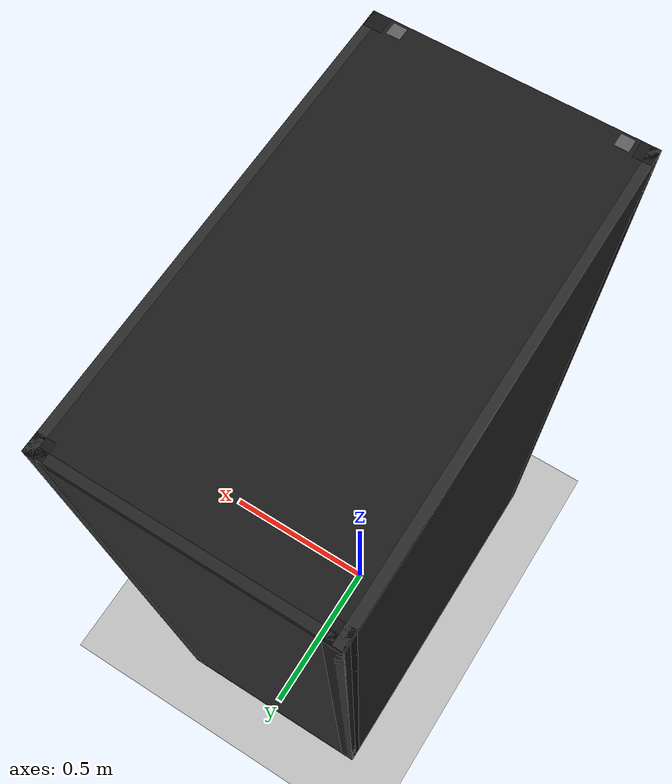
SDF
<sdf version="1.8">
 <world name="empty">
  <plugin filename="ignition-gazebo-physics-system" name="ignition::gazebo::systems::Physics"/>
  <plugin filename="ignition-gazebo-sensors-system" name="ignition::gazebo::systems::Sensors">
   <render_engine>ogre2</render_engine>
  </plugin>
  <plugin filename="ignition-gazebo-scene-broadcaster-system" name="ignition::gazebo::systems::SceneBroadcaster"/>
  <plugin filename="ignition-gazebo-user-commands-system" name="ignition::gazebo::systems::UserCommands"/>
  <plugin filename="ignition-gazebo-log-system" name="ignition::gazebo::systems::LogRecord"/>
  <physics name="1ms" type="ode">
   <max_step_size>0.001</max_step_size>
   <real_time_factor>1.0</real_time_factor>
  </physics>
  <scene>
   <ambient>0.4 0.4 0.4 1.0</ambient>
   <background>0.7 0.7 0.7 1.0</background>
   <grid>true</grid>
   <origin_visual>true</origin_visual>
  </scene>
  <atmosphere type="adiabatic">
   <temperature>288</temperature>
   <temperature_gradient>0.2</temperature_gradient>
  </atmosphere>
  <light type="directional" name="sun">
   <pose>0 0 10 0 0 0</pose>
   <diffuse>0.8 0.8 0.8 1</diffuse>
   <specular>0.2 0.2 0.2 1</specular>
   <direction>-0.5 0.1 -0.9</direction>
  </light>
  <model name="ground_plane">
   <static>true</static>
   <link name="link">
    <collision name="collision">
     <geometry><plane><normal>0 0 1</normal><size>100 100</size></plane></geometry>
    </collision>
    <visual name="visual">
     <geometry><plane><normal>0 0 1</normal><size>100 100</size></plane></geometry>
     <material>
      <ambient>0.8 0.8 0.8 1</ambient>
      <diffuse>0.8 0.8 0.8 1</diffuse>
      <specular>0.8 0.8 0.8 1</specular>
     </material>
    </visual>
   </link>
  </model>
  <include><uri>model://server_rack_model</uri><name>server_rack</name></include>
 </world>
</sdf>

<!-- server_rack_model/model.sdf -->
<sdf version="1.9">
  <model name="server_rack_model">
    <static>true</static>

    <link name="rack_body">

      <inertial>
        <mass>60.0</mass>
        <pose>0 0 0.9335 0 0 0</pose>
        <inertia>
          <ixx>15.0</ixx>
          <iyy>12.0</iyy>
          <izz>5.0</izz>
        </inertia>
      </inertial>

      <!-- Single bounding-box collision for cheap physics -->
      <collision name="rack_collision">
        <pose>0 0 0.9335 0 0 0</pose>
        <geometry>
          <box>
            <size>0.61 1.07 1.8669</size>
          </box>
        </geometry>
      </collision>

      <!-- ===================== VISUALS ===================== -->

      <!-- Bottom plate -->
      <visual name="bottom_plate">
        <pose>0 0 0.01 0 0 0</pose>
        <geometry>
          <box>
            <size>0.61 1.07 0.02</size>
          </box>
        </geometry>
        <material>
          <ambient>0.08 0.08 0.08 1</ambient>
          <diffuse>0.12 0.12 0.12 1</diffuse>
        </material>
      </visual>

      <!-- Top plate -->
      <visual name="top_plate">
        <pose>0 0 1.8569 0 0 0</pose>
        <geometry>
          <box>
            <size>0.61 1.07 0.02</size>
          </box>
        </geometry>
        <material>
          <ambient>0.08 0.08 0.08 1</ambient>
          <diffuse>0.12 0.12 0.12 1</diffuse>
        </material>
      </visual>

      <!-- Corner posts (4x), square 0.04 x 0.04 cross-section -->
      <visual name="post_front_left">
        <pose>-0.285 -0.515 0.9335 0 0 0</pose>
        <geometry>
          <box>
            <size>0.04 0.04 1.8669</size>
          </box>
        </geometry>
        <material>
          <ambient>0.05 0.05 0.05 1</ambient>
          <diffuse>0.1 0.1 0.1 1</diffuse>
        </material>
      </visual>

      <visual name="post_front_right">
        <pose>0.285 -0.515 0.9335 0 0 0</pose>
        <geometry>
          <box>
            <size>0.04 0.04 1.8669</size>
          </box>
        </geometry>
        <material>
          <ambient>0.05 0.05 0.05 1</ambient>
          <diffuse>0.1 0.1 0.1 1</diffuse>
        </material>
      </visual>

      <visual name="post_back_left">
        <pose>-0.285 0.515 0.9335 0 0 0</pose>
        <geometry>
          <box>
            <size>0.04 0.04 1.8669</size>
          </box>
        </geometry>
        <material>
          <ambient>0.05 0.05 0.05 1</ambient>
          <diffuse>0.1 0.1 0.1 1</diffuse>
        </material>
      </visual>

      <visual name="post_back_right">
        <pose>0.285 0.515 0.9335 0 0 0</pose>
        <geometry>
          <box>
            <size>0.04 0.04 1.8669</size>
          </box>
        </geometry>
        <material>
          <ambient>0.05 0.05 0.05 1</ambient>
          <diffuse>0.1 0.1 0.1 1</diffuse>
        </material>
      </visual>

      <!-- Side panels (left/right) -->
      <visual name="side_panel_left">
        <pose>-0.295 0 0.9335 0 0 0</pose>
        <geometry>
          <box>
            <size>0.02 1.07 1.8669</size>
          </box>
        </geometry>
        <material>
          <ambient>0.12 0.12 0.12 1</ambient>
          <diffuse>0.18 0.18 0.18 1</diffuse>
        </material>
      </visual>

      <visual name="side_panel_right">
        <pose>0.295 0 0.9335 0 0 0</pose>
        <geometry>
          <box>
            <size>0.02 1.07 1.8669</size>
          </box>
        </geometry>
        <material>
          <ambient>0.12 0.12 0.12 1</ambient>
          <diffuse>0.18 0.18 0.18 1</diffuse>
        </material>
      </visual>

      <!-- Back panel -->
      <visual name="back_panel">
        <pose>0 0.525 0.9335 0 0 0</pose>
        <geometry>
          <box>
            <size>0.61 0.02 1.8669</size>
          </box>
        </geometry>
        <material>
          <ambient>0.1 0.1 0.1 1</ambient>
          <diffuse>0.15 0.15 0.15 1</diffuse>
        </material>
      </visual>

      <!-- Front mounting rails (19" / 0.4826m apart), thin vertical strips -->
      <visual name="mount_rail_left">
        <pose>-0.2413 -0.515 0.9335 0 0 0</pose>
        <geometry>
          <box>
            <size>0.03 0.03 1.8669</size>
          </box>
        </geometry>
        <material>
          <ambient>0.3 0.3 0.3 1</ambient>
          <diffuse>0.4 0.4 0.4 1</diffuse>
        </material>
      </visual>

      <visual name="mount_rail_right">
        <pose>0.2413 -0.515 0.9335 0 0 0</pose>
        <geometry>
          <box>
            <size>0.03 0.03 1.8669</size>
          </box>
        </geometry>
        <material>
          <ambient>0.3 0.3 0.3 1</ambient>
          <diffuse>0.4 0.4 0.4 1</diffuse>
        </material>
      </visual>

    </link>
  </model>
</sdf>
